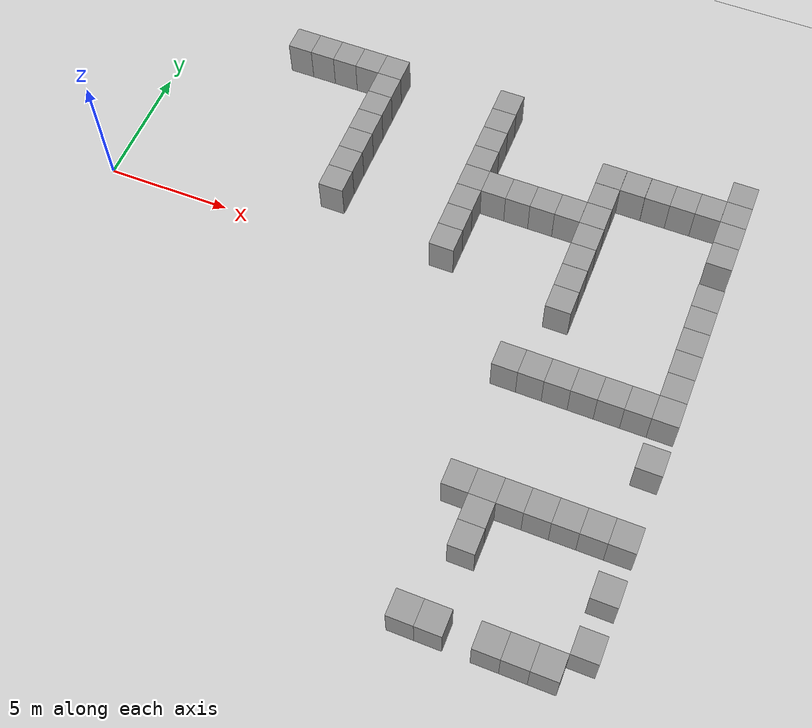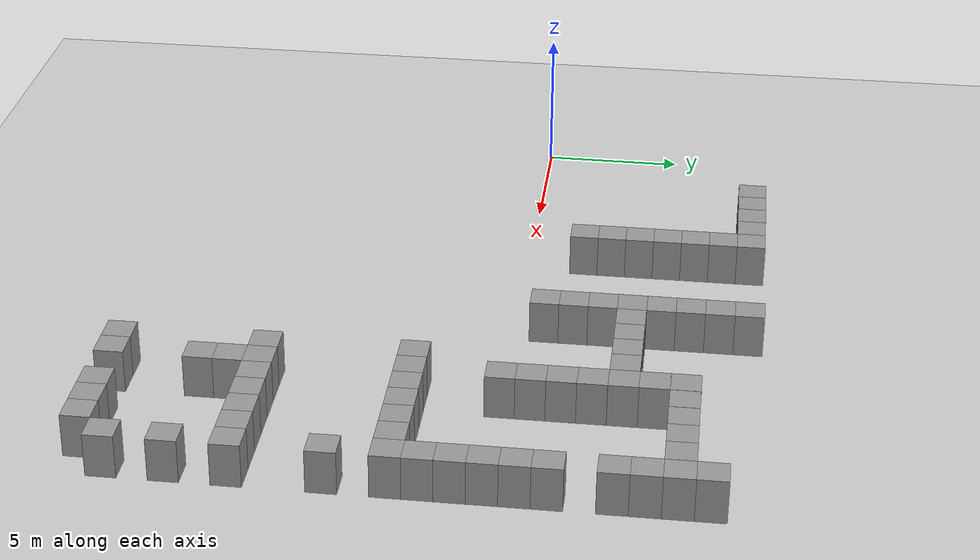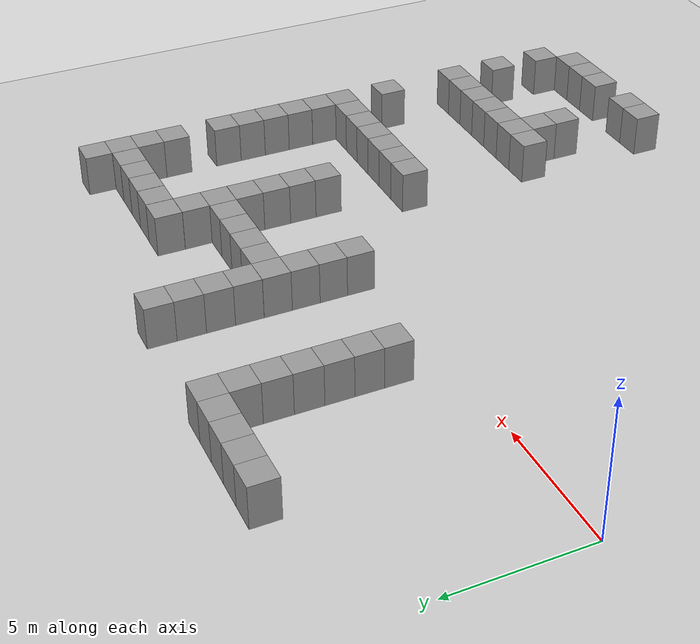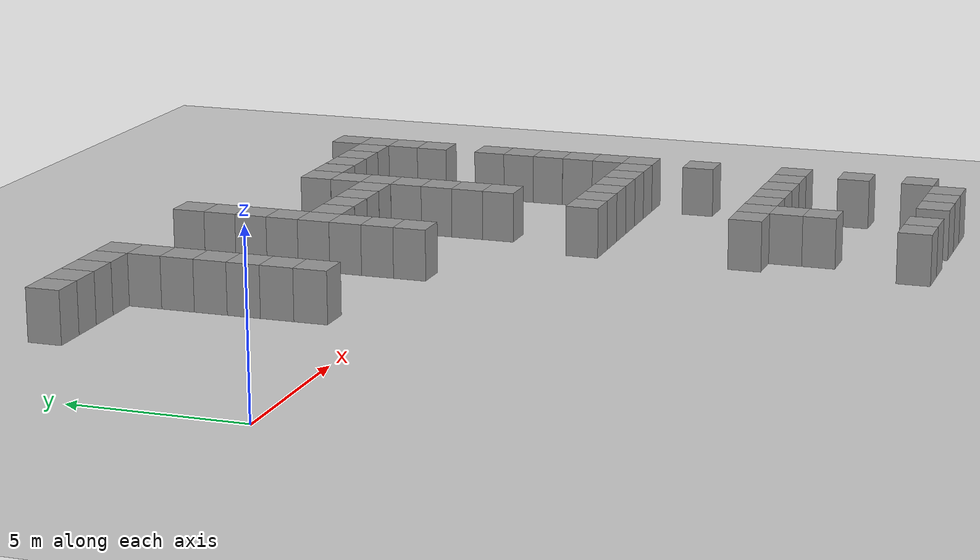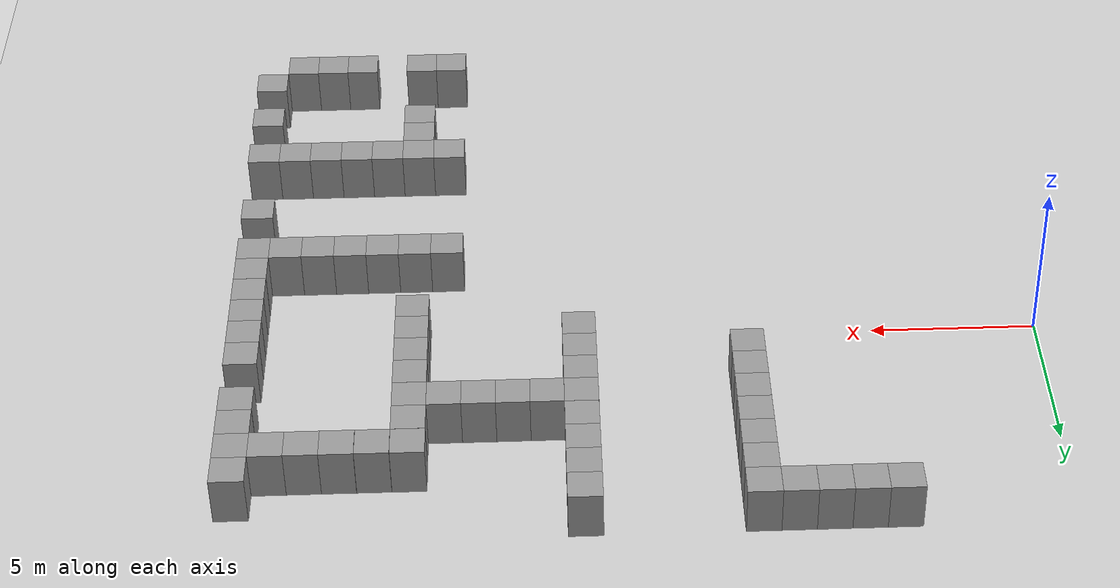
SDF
<sdf version="1.4">
 <world name="default">
  <model name="ground_plane">
   <static>1</static>
   <link name="link">
    <collision name="collision">
     <geometry><plane><normal>0 0 1</normal><size>100 100</size></plane></geometry>
     <surface><friction><ode><mu>100</mu><mu2>50</mu2></ode></friction></surface>
    </collision>
    <visual name="visual">
     <cast_shadows>0</cast_shadows>
     <geometry><plane><normal>0 0 1</normal><size>100 100</size></plane></geometry>
     <material>
      <script><uri>file://media/materials/scripts/gazebo.material</uri><name>Gazebo/Grey</name></script>
     </material>
    </visual>
    <velocity_decay><linear>0</linear><angular>0</angular></velocity_decay>
   </link>
  </model>
  <model name="unit_box_30">
   <pose>8.99995 1.99999 0.5 0 0 -7e-06</pose>
   <static>1</static>
   <link name="link">
    <inertial>
     <mass>1</mass>
     <inertia><ixx>1</ixx><ixy>0</ixy><ixz>0</ixz><iyy>1</iyy><iyz>0</iyz><izz>1</izz></inertia>
    </inertial>
    <collision name="collision"><geometry><box><size>1 1 2</size></box></geometry></collision>
    <visual name="visual">
     <geometry><box><size>1 1 2</size></box></geometry>
     <material>
      <script><uri>file://media/materials/scripts/gazebo.material</uri><name>Gazebo/Grey</name></script>
     </material>
    </visual>
    <velocity_decay><linear>0</linear><angular>0</angular></velocity_decay>
   </link>
   <static>0</static>
  </model>
  <model name="unit_box_31">
   <pose>8.99997 3 0.5 0 0 -6e-06</pose>
   <static>1</static>
   <link name="link">
    <inertial>
     <mass>1</mass>
     <inertia><ixx>1</ixx><ixy>0</ixy><ixz>0</ixz><iyy>1</iyy><iyz>0</iyz><izz>1</izz></inertia>
    </inertial>
    <collision name="collision"><geometry><box><size>1 1 2</size></box></geometry></collision>
    <visual name="visual">
     <geometry><box><size>1 1 2</size></box></geometry>
     <material>
      <script><uri>file://media/materials/scripts/gazebo.material</uri><name>Gazebo/Grey</name></script>
     </material>
    </visual>
    <velocity_decay><linear>0</linear><angular>0</angular></velocity_decay>
   </link>
   <static>0</static>
  </model>
  <model name="unit_box_32">
   <pose>8.99997 4 0.5 0 0 -8e-06</pose>
   <static>1</static>
   <link name="link">
    <inertial>
     <mass>1</mass>
     <inertia><ixx>1</ixx><ixy>0</ixy><ixz>0</ixz><iyy>1</iyy><iyz>0</iyz><izz>1</izz></inertia>
    </inertial>
    <collision name="collision"><geometry><box><size>1 1 2</size></box></geometry></collision>
    <visual name="visual">
     <geometry><box><size>1 1 2</size></box></geometry>
     <material>
      <script><uri>file://media/materials/scripts/gazebo.material</uri><name>Gazebo/Grey</name></script>
     </material>
    </visual>
    <velocity_decay><linear>0</linear><angular>0</angular></velocity_decay>
   </link>
   <static>0</static>
  </model>
  <model name="unit_box_33">
   <pose>9 5 0.5 0 0 -7e-06</pose>
   <static>1</static>
   <link name="link">
    <inertial>
     <mass>1</mass>
     <inertia><ixx>1</ixx><ixy>0</ixy><ixz>0</ixz><iyy>1</iyy><iyz>0</iyz><izz>1</izz></inertia>
    </inertial>
    <collision name="collision"><geometry><box><size>1 1 2</size></box></geometry></collision>
    <visual name="visual">
     <geometry><box><size>1 1 2</size></box></geometry>
     <material>
      <script><uri>file://media/materials/scripts/gazebo.material</uri><name>Gazebo/Grey</name></script>
     </material>
    </visual>
    <velocity_decay><linear>0</linear><angular>0</angular></velocity_decay>
   </link>
   <static>0</static>
  </model>
  <model name="unit_box_34">
   <pose>9 6 0.5 0 0 -6e-06</pose>
   <static>1</static>
   <link name="link">
    <inertial>
     <mass>1</mass>
     <inertia><ixx>1</ixx><ixy>0</ixy><ixz>0</ixz><iyy>1</iyy><iyz>0</iyz><izz>1</izz></inertia>
    </inertial>
    <collision name="collision"><geometry><box><size>1 1 2</size></box></geometry></collision>
    <visual name="visual">
     <geometry><box><size>1 1 2</size></box></geometry>
     <material>
      <script><uri>file://media/materials/scripts/gazebo.material</uri><name>Gazebo/Grey</name></script>
     </material>
    </visual>
    <velocity_decay><linear>0</linear><angular>0</angular></velocity_decay>
   </link>
   <static>0</static>
  </model>
  <model name="unit_box_38">
   <pose>9.00001 7 0.5 0 0 -3e-06</pose>
   <static>1</static>
   <link name="link">
    <inertial>
     <mass>1</mass>
     <inertia><ixx>1</ixx><ixy>0</ixy><ixz>0</ixz><iyy>1</iyy><iyz>0</iyz><izz>1</izz></inertia>
    </inertial>
    <collision name="collision"><geometry><box><size>1 1 2</size></box></geometry></collision>
    <visual name="visual">
     <geometry><box><size>1 1 2</size></box></geometry>
     <material>
      <script><uri>file://media/materials/scripts/gazebo.material</uri><name>Gazebo/Grey</name></script>
     </material>
    </visual>
    <velocity_decay><linear>0</linear><angular>0</angular></velocity_decay>
   </link>
   <static>0</static>
  </model>
  <model name="unit_box_39">
   <pose>9 8.00001 0.5 0 0 -1e-06</pose>
   <static>1</static>
   <link name="link">
    <inertial>
     <mass>1</mass>
     <inertia><ixx>1</ixx><ixy>0</ixy><ixz>0</ixz><iyy>1</iyy><iyz>0</iyz><izz>1</izz></inertia>
    </inertial>
    <collision name="collision"><geometry><box><size>1 1 2</size></box></geometry></collision>
    <visual name="visual">
     <geometry><box><size>1 1 2</size></box></geometry>
     <material>
      <script><uri>file://media/materials/scripts/gazebo.material</uri><name>Gazebo/Grey</name></script>
     </material>
    </visual>
    <velocity_decay><linear>0</linear><angular>0</angular></velocity_decay>
   </link>
   <static>0</static>
  </model>
  <model name="unit_box_51">
   <pose>8 7.99999 0.5 0 -0 2e-06</pose>
   <static>1</static>
   <link name="link">
    <inertial>
     <mass>1</mass>
     <inertia><ixx>1</ixx><ixy>0</ixy><ixz>0</ixz><iyy>1</iyy><iyz>0</iyz><izz>1</izz></inertia>
    </inertial>
    <collision name="collision"><geometry><box><size>1 1 2</size></box></geometry></collision>
    <visual name="visual">
     <geometry><box><size>1 1 2</size></box></geometry>
     <material>
      <script><uri>file://media/materials/scripts/gazebo.material</uri><name>Gazebo/Grey</name></script>
     </material>
    </visual>
    <velocity_decay><linear>0</linear><angular>0</angular></velocity_decay>
   </link>
   <static>0</static>
  </model>
  <model name="unit_box_52">
   <pose>7 8.00001 0.5 0 -0 1e-06</pose>
   <static>1</static>
   <link name="link">
    <inertial>
     <mass>1</mass>
     <inertia><ixx>1</ixx><ixy>0</ixy><ixz>0</ixz><iyy>1</iyy><iyz>0</iyz><izz>1</izz></inertia>
    </inertial>
    <collision name="collision"><geometry><box><size>1 1 2</size></box></geometry></collision>
    <visual name="visual">
     <geometry><box><size>1 1 2</size></box></geometry>
     <material>
      <script><uri>file://media/materials/scripts/gazebo.material</uri><name>Gazebo/Grey</name></script>
     </material>
    </visual>
    <velocity_decay><linear>0</linear><angular>0</angular></velocity_decay>
   </link>
   <static>0</static>
  </model>
  <model name="unit_box_53">
   <pose>6 8 0.5 0 0 -3e-06</pose>
   <static>1</static>
   <link name="link">
    <inertial>
     <mass>1</mass>
     <inertia><ixx>1</ixx><ixy>0</ixy><ixz>0</ixz><iyy>1</iyy><iyz>0</iyz><izz>1</izz></inertia>
    </inertial>
    <collision name="collision"><geometry><box><size>1 1 2</size></box></geometry></collision>
    <visual name="visual">
     <geometry><box><size>1 1 2</size></box></geometry>
     <material>
      <script><uri>file://media/materials/scripts/gazebo.material</uri><name>Gazebo/Grey</name></script>
     </material>
    </visual>
    <velocity_decay><linear>0</linear><angular>0</angular></velocity_decay>
   </link>
   <static>0</static>
  </model>
  <model name="unit_box_54">
   <pose>5 8 0.5 0 0 -1e-06</pose>
   <static>1</static>
   <link name="link">
    <inertial>
     <mass>1</mass>
     <inertia><ixx>1</ixx><ixy>0</ixy><ixz>0</ixz><iyy>1</iyy><iyz>0</iyz><izz>1</izz></inertia>
    </inertial>
    <collision name="collision"><geometry><box><size>1 1 2</size></box></geometry></collision>
    <visual name="visual">
     <geometry><box><size>1 1 2</size></box></geometry>
     <material>
      <script><uri>file://media/materials/scripts/gazebo.material</uri><name>Gazebo/Grey</name></script>
     </material>
    </visual>
    <velocity_decay><linear>0</linear><angular>0</angular></velocity_decay>
   </link>
   <static>0</static>
  </model>
  <model name="unit_box_169">
   <pose>14 8.00027 0.5 0 0 -7.2e-05</pose>
   <static>1</static>
   <link name="link">
    <inertial>
     <mass>1</mass>
     <inertia><ixx>1</ixx><ixy>0</ixy><ixz>0</ixz><iyy>1</iyy><iyz>0</iyz><izz>1</izz></inertia>
    </inertial>
    <collision name="collision"><geometry><box><size>1 1 2</size></box></geometry></collision>
    <visual name="visual">
     <geometry><box><size>1 1 2</size></box></geometry>
     <material>
      <script><uri>file://media/materials/scripts/gazebo.material</uri><name>Gazebo/Grey</name></script>
     </material>
    </visual>
    <velocity_decay><linear>0</linear><angular>0</angular></velocity_decay>
   </link>
   <static>0</static>
  </model>
  <model name="unit_box_170">
   <pose>14 7.00026 0.5 0 0 -7.2e-05</pose>
   <static>1</static>
   <link name="link">
    <inertial>
     <mass>1</mass>
     <inertia><ixx>1</ixx><ixy>0</ixy><ixz>0</ixz><iyy>1</iyy><iyz>0</iyz><izz>1</izz></inertia>
    </inertial>
    <collision name="collision"><geometry><box><size>1 1 2</size></box></geometry></collision>
    <visual name="visual">
     <geometry><box><size>1 1 2</size></box></geometry>
     <material>
      <script><uri>file://media/materials/scripts/gazebo.material</uri><name>Gazebo/Grey</name></script>
     </material>
    </visual>
    <velocity_decay><linear>0</linear><angular>0</angular></velocity_decay>
   </link>
   <static>0</static>
  </model>
  <model name="unit_box_171">
   <pose>13.9998 6.00025 0.5 0 0 -8.2e-05</pose>
   <static>1</static>
   <link name="link">
    <inertial>
     <mass>1</mass>
     <inertia><ixx>1</ixx><ixy>0</ixy><ixz>0</ixz><iyy>1</iyy><iyz>0</iyz><izz>1</izz></inertia>
    </inertial>
    <collision name="collision"><geometry><box><size>1 1 2</size></box></geometry></collision>
    <visual name="visual">
     <geometry><box><size>1 1 2</size></box></geometry>
     <material>
      <script><uri>file://media/materials/scripts/gazebo.material</uri><name>Gazebo/Grey</name></script>
     </material>
    </visual>
    <velocity_decay><linear>0</linear><angular>0</angular></velocity_decay>
   </link>
   <static>0</static>
  </model>
  <model name="unit_box_172">
   <pose>13.9996 5.00025 0.5 0 0 -8.2e-05</pose>
   <static>1</static>
   <link name="link">
    <inertial>
     <mass>1</mass>
     <inertia><ixx>1</ixx><ixy>0</ixy><ixz>0</ixz><iyy>1</iyy><iyz>0</iyz><izz>1</izz></inertia>
    </inertial>
    <collision name="collision"><geometry><box><size>1 1 2</size></box></geometry></collision>
    <visual name="visual">
     <geometry><box><size>1 1 2</size></box></geometry>
     <material>
      <script><uri>file://media/materials/scripts/gazebo.material</uri><name>Gazebo/Grey</name></script>
     </material>
    </visual>
    <velocity_decay><linear>0</linear><angular>0</angular></velocity_decay>
   </link>
   <static>0</static>
  </model>
  <model name="unit_box_173">
   <pose>13.9973 3.99985 0.5 0 -0 0.000731</pose>
   <static>1</static>
   <link name="link">
    <inertial>
     <mass>1</mass>
     <inertia><ixx>1</ixx><ixy>0</ixy><ixz>0</ixz><iyy>1</iyy><iyz>0</iyz><izz>1</izz></inertia>
    </inertial>
    <collision name="collision"><geometry><box><size>1 1 2</size></box></geometry></collision>
    <visual name="visual">
     <geometry><box><size>1 1 2</size></box></geometry>
     <material>
      <script><uri>file://media/materials/scripts/gazebo.material</uri><name>Gazebo/Grey</name></script>
     </material>
    </visual>
    <velocity_decay><linear>0</linear><angular>0</angular></velocity_decay>
   </link>
   <static>0</static>
  </model>
  <model name="unit_box_174">
   <pose>13.9996 2.99959 0.5 0 -0 0.000224</pose>
   <static>1</static>
   <link name="link">
    <inertial>
     <mass>1</mass>
     <inertia><ixx>1</ixx><ixy>0</ixy><ixz>0</ixz><iyy>1</iyy><iyz>0</iyz><izz>1</izz></inertia>
    </inertial>
    <collision name="collision"><geometry><box><size>1 1 2</size></box></geometry></collision>
    <visual name="visual">
     <geometry><box><size>1 1 2</size></box></geometry>
     <material>
      <script><uri>file://media/materials/scripts/gazebo.material</uri><name>Gazebo/Grey</name></script>
     </material>
    </visual>
    <velocity_decay><linear>0</linear><angular>0</angular></velocity_decay>
   </link>
   <static>0</static>
  </model>
  <model name="unit_box_175">
   <pose>13.9999 1.99957 0.5 0 -0 0.000199</pose>
   <static>1</static>
   <link name="link">
    <inertial>
     <mass>1</mass>
     <inertia><ixx>1</ixx><ixy>0</ixy><ixz>0</ixz><iyy>1</iyy><iyz>0</iyz><izz>1</izz></inertia>
    </inertial>
    <collision name="collision"><geometry><box><size>1 1 2</size></box></geometry></collision>
    <visual name="visual">
     <geometry><box><size>1 1 2</size></box></geometry>
     <material>
      <script><uri>file://media/materials/scripts/gazebo.material</uri><name>Gazebo/Grey</name></script>
     </material>
    </visual>
    <velocity_decay><linear>0</linear><angular>0</angular></velocity_decay>
   </link>
   <static>0</static>
  </model>
  <model name="unit_box_176">
   <pose>14 0.999522 0.5 0 -0 9.7e-05</pose>
   <static>1</static>
   <link name="link">
    <inertial>
     <mass>1</mass>
     <inertia><ixx>1</ixx><ixy>0</ixy><ixz>0</ixz><iyy>1</iyy><iyz>0</iyz><izz>1</izz></inertia>
    </inertial>
    <collision name="collision"><geometry><box><size>1 1 2</size></box></geometry></collision>
    <visual name="visual">
     <geometry><box><size>1 1 2</size></box></geometry>
     <material>
      <script><uri>file://media/materials/scripts/gazebo.material</uri><name>Gazebo/Grey</name></script>
     </material>
    </visual>
    <velocity_decay><linear>0</linear><angular>0</angular></velocity_decay>
   </link>
   <static>0</static>
  </model>
  <model name="unit_box_177">
   <pose>14.9974 4.00019 0.5 0 -0 0.000926</pose>
   <static>1</static>
   <link name="link">
    <inertial>
     <mass>1</mass>
     <inertia><ixx>1</ixx><ixy>0</ixy><ixz>0</ixz><iyy>1</iyy><iyz>0</iyz><izz>1</izz></inertia>
    </inertial>
    <collision name="collision"><geometry><box><size>1 1 2</size></box></geometry></collision>
    <visual name="visual">
     <geometry><box><size>1 1 2</size></box></geometry>
     <material>
      <script><uri>file://media/materials/scripts/gazebo.material</uri><name>Gazebo/Grey</name></script>
     </material>
    </visual>
    <velocity_decay><linear>0</linear><angular>0</angular></velocity_decay>
   </link>
   <static>0</static>
  </model>
  <model name="unit_box_178">
   <pose>15.9974 4.00015 0.5 0 -0 0.001009</pose>
   <static>1</static>
   <link name="link">
    <inertial>
     <mass>1</mass>
     <inertia><ixx>1</ixx><ixy>0</ixy><ixz>0</ixz><iyy>1</iyy><iyz>0</iyz><izz>1</izz></inertia>
    </inertial>
    <collision name="collision"><geometry><box><size>1 1 2</size></box></geometry></collision>
    <visual name="visual">
     <geometry><box><size>1 1 2</size></box></geometry>
     <material>
      <script><uri>file://media/materials/scripts/gazebo.material</uri><name>Gazebo/Grey</name></script>
     </material>
    </visual>
    <velocity_decay><linear>0</linear><angular>0</angular></velocity_decay>
   </link>
   <static>0</static>
  </model>
  <model name="unit_box_179">
   <pose>16.9975 3.99993 0.5 0 -0 0.001188</pose>
   <static>1</static>
   <link name="link">
    <inertial>
     <mass>1</mass>
     <inertia><ixx>1</ixx><ixy>0</ixy><ixz>0</ixz><iyy>1</iyy><iyz>0</iyz><izz>1</izz></inertia>
    </inertial>
    <collision name="collision"><geometry><box><size>1 1 2</size></box></geometry></collision>
    <visual name="visual">
     <geometry><box><size>1 1 2</size></box></geometry>
     <material>
      <script><uri>file://media/materials/scripts/gazebo.material</uri><name>Gazebo/Grey</name></script>
     </material>
    </visual>
    <velocity_decay><linear>0</linear><angular>0</angular></velocity_decay>
   </link>
   <static>0</static>
  </model>
  <model name="unit_box_180">
   <pose>17.9977 4.00059 0.5 0 -0 0.001689</pose>
   <static>1</static>
   <link name="link">
    <inertial>
     <mass>1</mass>
     <inertia><ixx>1</ixx><ixy>0</ixy><ixz>0</ixz><iyy>1</iyy><iyz>0</iyz><izz>1</izz></inertia>
    </inertial>
    <collision name="collision"><geometry><box><size>1 1 2</size></box></geometry></collision>
    <visual name="visual">
     <geometry><box><size>1 1 2</size></box></geometry>
     <material>
      <script><uri>file://media/materials/scripts/gazebo.material</uri><name>Gazebo/Grey</name></script>
     </material>
    </visual>
    <velocity_decay><linear>0</linear><angular>0</angular></velocity_decay>
   </link>
   <static>0</static>
  </model>
  <model name="unit_box_181">
   <pose>18.9984 4.00065 0.5 0 -0 0.002125</pose>
   <static>1</static>
   <link name="link">
    <inertial>
     <mass>1</mass>
     <inertia><ixx>1</ixx><ixy>0</ixy><ixz>0</ixz><iyy>1</iyy><iyz>0</iyz><izz>1</izz></inertia>
    </inertial>
    <collision name="collision"><geometry><box><size>1 1 2</size></box></geometry></collision>
    <visual name="visual">
     <geometry><box><size>1 1 2</size></box></geometry>
     <material>
      <script><uri>file://media/materials/scripts/gazebo.material</uri><name>Gazebo/Grey</name></script>
     </material>
    </visual>
    <velocity_decay><linear>0</linear><angular>0</angular></velocity_decay>
   </link>
   <static>0</static>
  </model>
  <model name="unit_box_182">
   <pose>24.0018 -0.999661 0.5 0 -0 7.7e-05</pose>
   <static>1</static>
   <link name="link">
    <inertial>
     <mass>1</mass>
     <inertia><ixx>1</ixx><ixy>0</ixy><ixz>0</ixz><iyy>1</iyy><iyz>0</iyz><izz>1</izz></inertia>
    </inertial>
    <collision name="collision"><geometry><box><size>1 1 2</size></box></geometry></collision>
    <visual name="visual">
     <geometry><box><size>1 1 2</size></box></geometry>
     <material>
      <script><uri>file://media/materials/scripts/gazebo.material</uri><name>Gazebo/Grey</name></script>
     </material>
    </visual>
    <velocity_decay><linear>0</linear><angular>0</angular></velocity_decay>
   </link>
   <static>0</static>
  </model>
  <model name="unit_box_183">
   <pose>18.996 5.00065 0.5 0 -0 0.002125</pose>
   <static>1</static>
   <link name="link">
    <inertial>
     <mass>1</mass>
     <inertia><ixx>1</ixx><ixy>0</ixy><ixz>0</ixz><iyy>1</iyy><iyz>0</iyz><izz>1</izz></inertia>
    </inertial>
    <collision name="collision"><geometry><box><size>1 1 2</size></box></geometry></collision>
    <visual name="visual">
     <geometry><box><size>1 1 2</size></box></geometry>
     <material>
      <script><uri>file://media/materials/scripts/gazebo.material</uri><name>Gazebo/Grey</name></script>
     </material>
    </visual>
    <velocity_decay><linear>0</linear><angular>0</angular></velocity_decay>
   </link>
   <static>0</static>
  </model>
  <model name="unit_box_184">
   <pose>18.9921 6.00258 0.5 0 -0 0.000734</pose>
   <static>1</static>
   <link name="link">
    <inertial>
     <mass>1</mass>
     <inertia><ixx>1</ixx><ixy>0</ixy><ixz>0</ixz><iyy>1</iyy><iyz>0</iyz><izz>1</izz></inertia>
    </inertial>
    <collision name="collision"><geometry><box><size>1 1 2</size></box></geometry></collision>
    <visual name="visual">
     <geometry><box><size>1 1 2</size></box></geometry>
     <material>
      <script><uri>file://media/materials/scripts/gazebo.material</uri><name>Gazebo/Grey</name></script>
     </material>
    </visual>
    <velocity_decay><linear>0</linear><angular>0</angular></velocity_decay>
   </link>
   <static>0</static>
  </model>
  <model name="unit_box_185">
   <pose>21.0007 5.99621 0.5 0 -0 0.00019</pose>
   <static>1</static>
   <link name="link">
    <inertial>
     <mass>1</mass>
     <inertia><ixx>1</ixx><ixy>0</ixy><ixz>0</ixz><iyy>1</iyy><iyz>0</iyz><izz>1</izz></inertia>
    </inertial>
    <collision name="collision"><geometry><box><size>1 1 2</size></box></geometry></collision>
    <visual name="visual">
     <geometry><box><size>1 1 2</size></box></geometry>
     <material>
      <script><uri>file://media/materials/scripts/gazebo.material</uri><name>Gazebo/Grey</name></script>
     </material>
    </visual>
    <velocity_decay><linear>0</linear><angular>0</angular></velocity_decay>
   </link>
   <static>0</static>
  </model>
  <model name="unit_box_186">
   <pose>22.0007 5.99697 0.5 0 -0 0.000178</pose>
   <static>1</static>
   <link name="link">
    <inertial>
     <mass>1</mass>
     <inertia><ixx>1</ixx><ixy>0</ixy><ixz>0</ixz><iyy>1</iyy><iyz>0</iyz><izz>1</izz></inertia>
    </inertial>
    <collision name="collision"><geometry><box><size>1 1 2</size></box></geometry></collision>
    <visual name="visual">
     <geometry><box><size>1 1 2</size></box></geometry>
     <material>
      <script><uri>file://media/materials/scripts/gazebo.material</uri><name>Gazebo/Grey</name></script>
     </material>
    </visual>
    <velocity_decay><linear>0</linear><angular>0</angular></velocity_decay>
   </link>
   <static>0</static>
  </model>
  <model name="unit_box_187">
   <pose>23.0007 5.99842 0.5 0 -0 0.000172</pose>
   <static>1</static>
   <link name="link">
    <inertial>
     <mass>1</mass>
     <inertia><ixx>1</ixx><ixy>0</ixy><ixz>0</ixz><iyy>1</iyy><iyz>0</iyz><izz>1</izz></inertia>
    </inertial>
    <collision name="collision"><geometry><box><size>1 1 2</size></box></geometry></collision>
    <visual name="visual">
     <geometry><box><size>1 1 2</size></box></geometry>
     <material>
      <script><uri>file://media/materials/scripts/gazebo.material</uri><name>Gazebo/Grey</name></script>
     </material>
    </visual>
    <velocity_decay><linear>0</linear><angular>0</angular></velocity_decay>
   </link>
   <static>0</static>
  </model>
  <model name="unit_box_191">
   <pose>24.0002 7.00042 0.5 0 -0 3.8e-05</pose>
   <static>1</static>
   <link name="link">
    <inertial>
     <mass>1</mass>
     <inertia><ixx>1</ixx><ixy>0</ixy><ixz>0</ixz><iyy>1</iyy><iyz>0</iyz><izz>1</izz></inertia>
    </inertial>
    <collision name="collision"><geometry><box><size>1 1 2</size></box></geometry></collision>
    <visual name="visual">
     <geometry><box><size>1 1 2</size></box></geometry>
     <material>
      <script><uri>file://media/materials/scripts/gazebo.material</uri><name>Gazebo/Grey</name></script>
     </material>
    </visual>
    <velocity_decay><linear>0</linear><angular>0</angular></velocity_decay>
   </link>
   <static>0</static>
  </model>
  <model name="unit_box_192">
   <pose>24.0014 6.00042 0.5 0 -0 3.8e-05</pose>
   <static>1</static>
   <link name="link">
    <inertial>
     <mass>1</mass>
     <inertia><ixx>1</ixx><ixy>0</ixy><ixz>0</ixz><iyy>1</iyy><iyz>0</iyz><izz>1</izz></inertia>
    </inertial>
    <collision name="collision"><geometry><box><size>1 1 2</size></box></geometry></collision>
    <visual name="visual">
     <geometry><box><size>1 1 2</size></box></geometry>
     <material>
      <script><uri>file://media/materials/scripts/gazebo.material</uri><name>Gazebo/Grey</name></script>
     </material>
    </visual>
    <velocity_decay><linear>0</linear><angular>0</angular></velocity_decay>
   </link>
   <static>0</static>
  </model>
  <model name="unit_box_193">
   <pose>19.996 5.99787 0.5 0 -0 0.000185</pose>
   <static>1</static>
   <link name="link">
    <inertial>
     <mass>1</mass>
     <inertia><ixx>1</ixx><ixy>0</ixy><ixz>0</ixz><iyy>1</iyy><iyz>0</iyz><izz>1</izz></inertia>
    </inertial>
    <collision name="collision"><geometry><box><size>1 1 2</size></box></geometry></collision>
    <visual name="visual">
     <geometry><box><size>1 1 2</size></box></geometry>
     <material>
      <script><uri>file://media/materials/scripts/gazebo.material</uri><name>Gazebo/Grey</name></script>
     </material>
    </visual>
    <velocity_decay><linear>0</linear><angular>0</angular></velocity_decay>
   </link>
   <static>0</static>
  </model>
  <model name="unit_box_194">
   <pose>24.0008 5.00042 0.5 0 -0 3.8e-05</pose>
   <static>1</static>
   <link name="link">
    <inertial>
     <mass>1</mass>
     <inertia><ixx>1</ixx><ixy>0</ixy><ixz>0</ixz><iyy>1</iyy><iyz>0</iyz><izz>1</izz></inertia>
    </inertial>
    <collision name="collision"><geometry><box><size>1 1 2</size></box></geometry></collision>
    <visual name="visual">
     <geometry><box><size>1 1 2</size></box></geometry>
     <material>
      <script><uri>file://media/materials/scripts/gazebo.material</uri><name>Gazebo/Grey</name></script>
     </material>
    </visual>
    <velocity_decay><linear>0</linear><angular>0</angular></velocity_decay>
   </link>
   <static>0</static>
  </model>
  <model name="unit_box_195">
   <pose>24.0001 4.00041 0.5 0 -0 5.9e-05</pose>
   <static>1</static>
   <link name="link">
    <inertial>
     <mass>1</mass>
     <inertia><ixx>1</ixx><ixy>0</ixy><ixz>0</ixz><iyy>1</iyy><iyz>0</iyz><izz>1</izz></inertia>
    </inertial>
    <collision name="collision"><geometry><box><size>1 1 2</size></box></geometry></collision>
    <visual name="visual">
     <geometry><box><size>1 1 2</size></box></geometry>
     <material>
      <script><uri>file://media/materials/scripts/gazebo.material</uri><name>Gazebo/Grey</name></script>
     </material>
    </visual>
    <velocity_decay><linear>0</linear><angular>0</angular></velocity_decay>
   </link>
   <static>0</static>
  </model>
  <model name="unit_box_197">
   <pose>23.9999 2.00038 0.5 0 -0 6.3e-05</pose>
   <static>1</static>
   <link name="link">
    <inertial>
     <mass>1</mass>
     <inertia><ixx>1</ixx><ixy>0</ixy><ixz>0</ixz><iyy>1</iyy><iyz>0</iyz><izz>1</izz></inertia>
    </inertial>
    <collision name="collision"><geometry><box><size>1 1 2</size></box></geometry></collision>
    <visual name="visual">
     <geometry><box><size>1 1 2</size></box></geometry>
     <material>
      <script><uri>file://media/materials/scripts/gazebo.material</uri><name>Gazebo/Grey</name></script>
     </material>
    </visual>
    <velocity_decay><linear>0</linear><angular>0</angular></velocity_decay>
   </link>
   <static>0</static>
  </model>
  <model name="unit_box_198">
   <pose>23.9999 1.00035 0.5 0 -0 7.1e-05</pose>
   <static>1</static>
   <link name="link">
    <inertial>
     <mass>1</mass>
     <inertia><ixx>1</ixx><ixy>0</ixy><ixz>0</ixz><iyy>1</iyy><iyz>0</iyz><izz>1</izz></inertia>
    </inertial>
    <collision name="collision"><geometry><box><size>1 1 2</size></box></geometry></collision>
    <visual name="visual">
     <geometry><box><size>1 1 2</size></box></geometry>
     <material>
      <script><uri>file://media/materials/scripts/gazebo.material</uri><name>Gazebo/Grey</name></script>
     </material>
    </visual>
    <velocity_decay><linear>0</linear><angular>0</angular></velocity_decay>
   </link>
   <static>0</static>
  </model>
  <model name="unit_box_199">
   <pose>23.9997 0.000344 0.5 0 -0 7.4e-05</pose>
   <static>1</static>
   <link name="link">
    <inertial>
     <mass>1</mass>
     <inertia><ixx>1</ixx><ixy>0</ixy><ixz>0</ixz><iyy>1</iyy><iyz>0</iyz><izz>1</izz></inertia>
    </inertial>
    <collision name="collision"><geometry><box><size>1 1 2</size></box></geometry></collision>
    <visual name="visual">
     <geometry><box><size>1 1 2</size></box></geometry>
     <material>
      <script><uri>file://media/materials/scripts/gazebo.material</uri><name>Gazebo/Grey</name></script>
     </material>
    </visual>
    <velocity_decay><linear>0</linear><angular>0</angular></velocity_decay>
   </link>
   <static>0</static>
  </model>
  <model name="unit_box_200">
   <pose>19 2.9997 0.5 0 -0 0.000228</pose>
   <static>1</static>
   <link name="link">
    <inertial>
     <mass>1</mass>
     <inertia><ixx>1</ixx><ixy>0</ixy><ixz>0</ixz><iyy>1</iyy><iyz>0</iyz><izz>1</izz></inertia>
    </inertial>
    <collision name="collision"><geometry><box><size>1 1 2</size></box></geometry></collision>
    <visual name="visual">
     <geometry><box><size>1 1 2</size></box></geometry>
     <material>
      <script><uri>file://media/materials/scripts/gazebo.material</uri><name>Gazebo/Grey</name></script>
     </material>
    </visual>
    <velocity_decay><linear>0</linear><angular>0</angular></velocity_decay>
   </link>
   <static>0</static>
  </model>
  <model name="unit_box_201">
   <pose>19 1.99966 0.5 0 -0 0.000143</pose>
   <static>1</static>
   <link name="link">
    <inertial>
     <mass>1</mass>
     <inertia><ixx>1</ixx><ixy>0</ixy><ixz>0</ixz><iyy>1</iyy><iyz>0</iyz><izz>1</izz></inertia>
    </inertial>
    <collision name="collision"><geometry><box><size>1 1 2</size></box></geometry></collision>
    <visual name="visual">
     <geometry><box><size>1 1 2</size></box></geometry>
     <material>
      <script><uri>file://media/materials/scripts/gazebo.material</uri><name>Gazebo/Grey</name></script>
     </material>
    </visual>
    <velocity_decay><linear>0</linear><angular>0</angular></velocity_decay>
   </link>
   <static>0</static>
  </model>
  <model name="unit_box_202">
   <pose>19 0.999639 0.5 0 -0 0.00011</pose>
   <static>1</static>
   <link name="link">
    <inertial>
     <mass>1</mass>
     <inertia><ixx>1</ixx><ixy>0</ixy><ixz>0</ixz><iyy>1</iyy><iyz>0</iyz><izz>1</izz></inertia>
    </inertial>
    <collision name="collision"><geometry><box><size>1 1 2</size></box></geometry></collision>
    <visual name="visual">
     <geometry><box><size>1 1 2</size></box></geometry>
     <material>
      <script><uri>file://media/materials/scripts/gazebo.material</uri><name>Gazebo/Grey</name></script>
     </material>
    </visual>
    <velocity_decay><linear>0</linear><angular>0</angular></velocity_decay>
   </link>
   <static>0</static>
  </model>
  <model name="unit_box_203">
   <pose>19 -0.000365 0.5 0 -0 0.000106</pose>
   <static>1</static>
   <link name="link">
    <inertial>
     <mass>1</mass>
     <inertia><ixx>1</ixx><ixy>0</ixy><ixz>0</ixz><iyy>1</iyy><iyz>0</iyz><izz>1</izz></inertia>
    </inertial>
    <collision name="collision"><geometry><box><size>1 1 2</size></box></geometry></collision>
    <visual name="visual">
     <geometry><box><size>1 1 2</size></box></geometry>
     <material>
      <script><uri>file://media/materials/scripts/gazebo.material</uri><name>Gazebo/Grey</name></script>
     </material>
    </visual>
    <velocity_decay><linear>0</linear><angular>0</angular></velocity_decay>
   </link>
   <static>0</static>
  </model>
  <model name="unit_box_204">
   <pose>24 -1.99999 0.5 0 -0 1e-06</pose>
   <static>1</static>
   <link name="link">
    <inertial>
     <mass>1</mass>
     <inertia><ixx>1</ixx><ixy>0</ixy><ixz>0</ixz><iyy>1</iyy><iyz>0</iyz><izz>1</izz></inertia>
    </inertial>
    <collision name="collision"><geometry><box><size>1 1 2</size></box></geometry></collision>
    <visual name="visual">
     <geometry><box><size>1 1 2</size></box></geometry>
     <material>
      <script><uri>file://media/materials/scripts/gazebo.material</uri><name>Gazebo/Grey</name></script>
     </material>
    </visual>
    <velocity_decay><linear>0</linear><angular>0</angular></velocity_decay>
   </link>
   <static>0</static>
  </model>
  <model name="unit_box_205">
   <pose>24 -2.99999 0.5 0 -0 1e-06</pose>
   <static>1</static>
   <link name="link">
    <inertial>
     <mass>1</mass>
     <inertia><ixx>1</ixx><ixy>0</ixy><ixz>0</ixz><iyy>1</iyy><iyz>0</iyz><izz>1</izz></inertia>
    </inertial>
    <collision name="collision"><geometry><box><size>1 1 2</size></box></geometry></collision>
    <visual name="visual">
     <geometry><box><size>1 1 2</size></box></geometry>
     <material>
      <script><uri>file://media/materials/scripts/gazebo.material</uri><name>Gazebo/Grey</name></script>
     </material>
    </visual>
    <velocity_decay><linear>0</linear><angular>0</angular></velocity_decay>
   </link>
   <static>0</static>
  </model>
  <model name="unit_box_207">
   <pose>24 -4.99999 0.5 0 0 -1e-06</pose>
   <static>1</static>
   <link name="link">
    <inertial>
     <mass>1</mass>
     <inertia><ixx>1</ixx><ixy>0</ixy><ixz>0</ixz><iyy>1</iyy><iyz>0</iyz><izz>1</izz></inertia>
    </inertial>
    <collision name="collision"><geometry><box><size>1 1 2</size></box></geometry></collision>
    <visual name="visual">
     <geometry><box><size>1 1 2</size></box></geometry>
     <material>
      <script><uri>file://media/materials/scripts/gazebo.material</uri><name>Gazebo/Grey</name></script>
     </material>
    </visual>
    <velocity_decay><linear>0</linear><angular>0</angular></velocity_decay>
   </link>
   <static>0</static>
  </model>
  <model name="unit_box_209">
   <pose>18 -3 0.5 0 0 -2e-06</pose>
   <static>1</static>
   <link name="link">
    <inertial>
     <mass>1</mass>
     <inertia><ixx>1</ixx><ixy>0</ixy><ixz>0</ixz><iyy>1</iyy><iyz>0</iyz><izz>1</izz></inertia>
    </inertial>
    <collision name="collision"><geometry><box><size>1 1 2</size></box></geometry></collision>
    <visual name="visual">
     <geometry><box><size>1 1 2</size></box></geometry>
     <material>
      <script><uri>file://media/materials/scripts/gazebo.material</uri><name>Gazebo/Grey</name></script>
     </material>
    </visual>
    <velocity_decay><linear>0</linear><angular>0</angular></velocity_decay>
   </link>
   <static>0</static>
  </model>
  <model name="unit_box_210">
   <pose>19 -3 0.5 0 0 -2e-06</pose>
   <static>1</static>
   <link name="link">
    <inertial>
     <mass>1</mass>
     <inertia><ixx>1</ixx><ixy>0</ixy><ixz>0</ixz><iyy>1</iyy><iyz>0</iyz><izz>1</izz></inertia>
    </inertial>
    <collision name="collision"><geometry><box><size>1 1 2</size></box></geometry></collision>
    <visual name="visual">
     <geometry><box><size>1 1 2</size></box></geometry>
     <material>
      <script><uri>file://media/materials/scripts/gazebo.material</uri><name>Gazebo/Grey</name></script>
     </material>
    </visual>
    <velocity_decay><linear>0</linear><angular>0</angular></velocity_decay>
   </link>
   <static>0</static>
  </model>
  <model name="unit_box_211">
   <pose>20 -3 0.5 0 0 -2e-06</pose>
   <static>1</static>
   <link name="link">
    <inertial>
     <mass>1</mass>
     <inertia><ixx>1</ixx><ixy>0</ixy><ixz>0</ixz><iyy>1</iyy><iyz>0</iyz><izz>1</izz></inertia>
    </inertial>
    <collision name="collision"><geometry><box><size>1 1 2</size></box></geometry></collision>
    <visual name="visual">
     <geometry><box><size>1 1 2</size></box></geometry>
     <material>
      <script><uri>file://media/materials/scripts/gazebo.material</uri><name>Gazebo/Grey</name></script>
     </material>
    </visual>
    <velocity_decay><linear>0</linear><angular>0</angular></velocity_decay>
   </link>
   <static>0</static>
  </model>
  <model name="unit_box_212">
   <pose>21 -3 0.5 0 0 -3e-06</pose>
   <static>1</static>
   <link name="link">
    <inertial>
     <mass>1</mass>
     <inertia><ixx>1</ixx><ixy>0</ixy><ixz>0</ixz><iyy>1</iyy><iyz>0</iyz><izz>1</izz></inertia>
    </inertial>
    <collision name="collision"><geometry><box><size>1 1 2</size></box></geometry></collision>
    <visual name="visual">
     <geometry><box><size>1 1 2</size></box></geometry>
     <material>
      <script><uri>file://media/materials/scripts/gazebo.material</uri><name>Gazebo/Grey</name></script>
     </material>
    </visual>
    <velocity_decay><linear>0</linear><angular>0</angular></velocity_decay>
   </link>
   <static>0</static>
  </model>
  <model name="unit_box_213">
   <pose>22 -3 0.5 0 0 -3e-06</pose>
   <static>1</static>
   <link name="link">
    <inertial>
     <mass>1</mass>
     <inertia><ixx>1</ixx><ixy>0</ixy><ixz>0</ixz><iyy>1</iyy><iyz>0</iyz><izz>1</izz></inertia>
    </inertial>
    <collision name="collision"><geometry><box><size>1 1 2</size></box></geometry></collision>
    <visual name="visual">
     <geometry><box><size>1 1 2</size></box></geometry>
     <material>
      <script><uri>file://media/materials/scripts/gazebo.material</uri><name>Gazebo/Grey</name></script>
     </material>
    </visual>
    <velocity_decay><linear>0</linear><angular>0</angular></velocity_decay>
   </link>
   <static>0</static>
  </model>
  <model name="unit_box_214">
   <pose>23 -3 0.5 0 0 -3e-06</pose>
   <static>1</static>
   <link name="link">
    <inertial>
     <mass>1</mass>
     <inertia><ixx>1</ixx><ixy>0</ixy><ixz>0</ixz><iyy>1</iyy><iyz>0</iyz><izz>1</izz></inertia>
    </inertial>
    <collision name="collision"><geometry><box><size>1 1 2</size></box></geometry></collision>
    <visual name="visual">
     <geometry><box><size>1 1 2</size></box></geometry>
     <material>
      <script><uri>file://media/materials/scripts/gazebo.material</uri><name>Gazebo/Grey</name></script>
     </material>
    </visual>
    <velocity_decay><linear>0</linear><angular>0</angular></velocity_decay>
   </link>
   <static>0</static>
  </model>
  <model name="unit_box_216">
   <pose>24 -8 0.5 0 0 -3e-06</pose>
   <static>1</static>
   <link name="link">
    <inertial>
     <mass>1</mass>
     <inertia><ixx>1</ixx><ixy>0</ixy><ixz>0</ixz><iyy>1</iyy><iyz>0</iyz><izz>1</izz></inertia>
    </inertial>
    <collision name="collision"><geometry><box><size>1 1 2</size></box></geometry></collision>
    <visual name="visual">
     <geometry><box><size>1 1 2</size></box></geometry>
     <material>
      <script><uri>file://media/materials/scripts/gazebo.material</uri><name>Gazebo/Grey</name></script>
     </material>
    </visual>
    <velocity_decay><linear>0</linear><angular>0</angular></velocity_decay>
   </link>
   <static>0</static>
  </model>
  <model name="unit_box_217">
   <pose>23 -8 0.5 0 -0 0</pose>
   <static>1</static>
   <link name="link">
    <inertial>
     <mass>1</mass>
     <inertia><ixx>1</ixx><ixy>0</ixy><ixz>0</ixz><iyy>1</iyy><iyz>0</iyz><izz>1</izz></inertia>
    </inertial>
    <collision name="collision"><geometry><box><size>1 1 2</size></box></geometry></collision>
    <visual name="visual">
     <geometry><box><size>1 1 2</size></box></geometry>
     <material>
      <script><uri>file://media/materials/scripts/gazebo.material</uri><name>Gazebo/Grey</name></script>
     </material>
    </visual>
    <velocity_decay><linear>0</linear><angular>0</angular></velocity_decay>
   </link>
   <static>0</static>
  </model>
  <model name="unit_box_218">
   <pose>22 -8.00001 0.5 0 0 -1e-06</pose>
   <static>1</static>
   <link name="link">
    <inertial>
     <mass>1</mass>
     <inertia><ixx>1</ixx><ixy>0</ixy><ixz>0</ixz><iyy>1</iyy><iyz>0</iyz><izz>1</izz></inertia>
    </inertial>
    <collision name="collision"><geometry><box><size>1 1 2</size></box></geometry></collision>
    <visual name="visual">
     <geometry><box><size>1 1 2</size></box></geometry>
     <material>
      <script><uri>file://media/materials/scripts/gazebo.material</uri><name>Gazebo/Grey</name></script>
     </material>
    </visual>
    <velocity_decay><linear>0</linear><angular>0</angular></velocity_decay>
   </link>
   <static>0</static>
  </model>
  <model name="unit_box_219">
   <pose>21 -8 0.5 0 0 -1e-06</pose>
   <static>1</static>
   <link name="link">
    <inertial>
     <mass>1</mass>
     <inertia><ixx>1</ixx><ixy>0</ixy><ixz>0</ixz><iyy>1</iyy><iyz>0</iyz><izz>1</izz></inertia>
    </inertial>
    <collision name="collision"><geometry><box><size>1 1 2</size></box></geometry></collision>
    <visual name="visual">
     <geometry><box><size>1 1 2</size></box></geometry>
     <material>
      <script><uri>file://media/materials/scripts/gazebo.material</uri><name>Gazebo/Grey</name></script>
     </material>
    </visual>
    <velocity_decay><linear>0</linear><angular>0</angular></velocity_decay>
   </link>
   <static>0</static>
  </model>
  <model name="unit_box_220">
   <pose>20 -8 0.500001 1e-06 -0 -1e-06</pose>
   <static>1</static>
   <link name="link">
    <inertial>
     <mass>1</mass>
     <inertia><ixx>1</ixx><ixy>0</ixy><ixz>0</ixz><iyy>1</iyy><iyz>0</iyz><izz>1</izz></inertia>
    </inertial>
    <collision name="collision"><geometry><box><size>1 1 2</size></box></geometry></collision>
    <visual name="visual">
     <geometry><box><size>1 1 2</size></box></geometry>
     <material>
      <script><uri>file://media/materials/scripts/gazebo.material</uri><name>Gazebo/Grey</name></script>
     </material>
    </visual>
    <velocity_decay><linear>0</linear><angular>0</angular></velocity_decay>
   </link>
   <static>0</static>
  </model>
  <model name="unit_box_221">
   <pose>19 -7.99999 0.5 0 -1e-06 -4e-06</pose>
   <static>1</static>
   <link name="link">
    <inertial>
     <mass>1</mass>
     <inertia><ixx>1</ixx><ixy>0</ixy><ixz>0</ixz><iyy>1</iyy><iyz>0</iyz><izz>1</izz></inertia>
    </inertial>
    <collision name="collision"><geometry><box><size>1 1 2</size></box></geometry></collision>
    <visual name="visual">
     <geometry><box><size>1 1 2</size></box></geometry>
     <material>
      <script><uri>file://media/materials/scripts/gazebo.material</uri><name>Gazebo/Grey</name></script>
     </material>
    </visual>
    <velocity_decay><linear>0</linear><angular>0</angular></velocity_decay>
   </link>
   <static>0</static>
  </model>
  <model name="unit_box_222">
   <pose>18 -8.00001 0.5 0 0 -2e-06</pose>
   <static>1</static>
   <link name="link">
    <inertial>
     <mass>1</mass>
     <inertia><ixx>1</ixx><ixy>0</ixy><ixz>0</ixz><iyy>1</iyy><iyz>0</iyz><izz>1</izz></inertia>
    </inertial>
    <collision name="collision"><geometry><box><size>1 1 2</size></box></geometry></collision>
    <visual name="visual">
     <geometry><box><size>1 1 2</size></box></geometry>
     <material>
      <script><uri>file://media/materials/scripts/gazebo.material</uri><name>Gazebo/Grey</name></script>
     </material>
    </visual>
    <velocity_decay><linear>0</linear><angular>0</angular></velocity_decay>
   </link>
   <static>0</static>
  </model>
  <model name="unit_box_271">
   <pose>19 -9 0.5 0 0 -4e-06</pose>
   <static>1</static>
   <link name="link">
    <inertial>
     <mass>1</mass>
     <inertia><ixx>1</ixx><ixy>0</ixy><ixz>0</ixz><iyy>1</iyy><iyz>0</iyz><izz>1</izz></inertia>
    </inertial>
    <collision name="collision"><geometry><box><size>1 1 2</size></box></geometry></collision>
    <visual name="visual">
     <geometry><box><size>1 1 2</size></box></geometry>
     <material>
      <script><uri>file://media/materials/scripts/gazebo.material</uri><name>Gazebo/Grey</name></script>
     </material>
    </visual>
    <velocity_decay><linear>0</linear><angular>0</angular></velocity_decay>
   </link>
   <static>0</static>
  </model>
  <model name="unit_box_272">
   <pose>19 -10 0.5 0 0 -5e-06</pose>
   <static>1</static>
   <link name="link">
    <inertial>
     <mass>1</mass>
     <inertia><ixx>1</ixx><ixy>0</ixy><ixz>0</ixz><iyy>1</iyy><iyz>0</iyz><izz>1</izz></inertia>
    </inertial>
    <collision name="collision"><geometry><box><size>1 1 2</size></box></geometry></collision>
    <visual name="visual">
     <geometry><box><size>1 1 2</size></box></geometry>
     <material>
      <script><uri>file://media/materials/scripts/gazebo.material</uri><name>Gazebo/Grey</name></script>
     </material>
    </visual>
    <velocity_decay><linear>0</linear><angular>0</angular></velocity_decay>
   </link>
   <static>0</static>
  </model>
  <model name="unit_box_275">
   <pose>24 -10 0.5 0 0 -6e-06</pose>
   <static>1</static>
   <link name="link">
    <inertial>
     <mass>1</mass>
     <inertia><ixx>1</ixx><ixy>0</ixy><ixz>0</ixz><iyy>1</iyy><iyz>0</iyz><izz>1</izz></inertia>
    </inertial>
    <collision name="collision"><geometry><box><size>1 1 2</size></box></geometry></collision>
    <visual name="visual">
     <geometry><box><size>1 1 2</size></box></geometry>
     <material>
      <script><uri>file://media/materials/scripts/gazebo.material</uri><name>Gazebo/Grey</name></script>
     </material>
    </visual>
    <velocity_decay><linear>0</linear><angular>0</angular></velocity_decay>
   </link>
   <static>0</static>
  </model>
  <model name="unit_box_277">
   <pose>24 -12 0.5 0 0 -4e-06</pose>
   <static>1</static>
   <link name="link">
    <inertial>
     <mass>1</mass>
     <inertia><ixx>1</ixx><ixy>0</ixy><ixz>0</ixz><iyy>1</iyy><iyz>0</iyz><izz>1</izz></inertia>
    </inertial>
    <collision name="collision"><geometry><box><size>1 1 2</size></box></geometry></collision>
    <visual name="visual">
     <geometry><box><size>1 1 2</size></box></geometry>
     <material>
      <script><uri>file://media/materials/scripts/gazebo.material</uri><name>Gazebo/Grey</name></script>
     </material>
    </visual>
    <velocity_decay><linear>0</linear><angular>0</angular></velocity_decay>
   </link>
   <static>0</static>
  </model>
  <model name="unit_box_281">
   <pose>18 -13 0.5 0 0 -1.1e-05</pose>
   <static>1</static>
   <link name="link">
    <inertial>
     <mass>1</mass>
     <inertia><ixx>1</ixx><ixy>0</ixy><ixz>0</ixz><iyy>1</iyy><iyz>0</iyz><izz>1</izz></inertia>
    </inertial>
    <collision name="collision"><geometry><box><size>1 1 2</size></box></geometry></collision>
    <visual name="visual">
     <geometry><box><size>1 1 2</size></box></geometry>
     <material>
      <script><uri>file://media/materials/scripts/gazebo.material</uri><name>Gazebo/Grey</name></script>
     </material>
    </visual>
    <velocity_decay><linear>0</linear><angular>0</angular></velocity_decay>
   </link>
   <static>0</static>
  </model>
  <model name="unit_box_282">
   <pose>19 -13 0.5 0 0 -9e-06</pose>
   <static>1</static>
   <link name="link">
    <inertial>
     <mass>1</mass>
     <inertia><ixx>1</ixx><ixy>0</ixy><ixz>0</ixz><iyy>1</iyy><iyz>0</iyz><izz>1</izz></inertia>
    </inertial>
    <collision name="collision"><geometry><box><size>1 1 2</size></box></geometry></collision>
    <visual name="visual">
     <geometry><box><size>1 1 2</size></box></geometry>
     <material>
      <script><uri>file://media/materials/scripts/gazebo.material</uri><name>Gazebo/Grey</name></script>
     </material>
    </visual>
    <velocity_decay><linear>0</linear><angular>0</angular></velocity_decay>
   </link>
   <static>0</static>
  </model>
  <model name="unit_box_284">
   <pose>21 -13 0.5 0 0 -6e-06</pose>
   <static>1</static>
   <link name="link">
    <inertial>
     <mass>1</mass>
     <inertia><ixx>1</ixx><ixy>0</ixy><ixz>0</ixz><iyy>1</iyy><iyz>0</iyz><izz>1</izz></inertia>
    </inertial>
    <collision name="collision"><geometry><box><size>1 1 2</size></box></geometry></collision>
    <visual name="visual">
     <geometry><box><size>1 1 2</size></box></geometry>
     <material>
      <script><uri>file://media/materials/scripts/gazebo.material</uri><name>Gazebo/Grey</name></script>
     </material>
    </visual>
    <velocity_decay><linear>0</linear><angular>0</angular></velocity_decay>
   </link>
   <static>0</static>
  </model>
  <model name="unit_box_285">
   <pose>22 -13 0.5 1e-06 -0 -6e-06</pose>
   <static>1</static>
   <link name="link">
    <inertial>
     <mass>1</mass>
     <inertia><ixx>1</ixx><ixy>0</ixy><ixz>0</ixz><iyy>1</iyy><iyz>0</iyz><izz>1</izz></inertia>
    </inertial>
    <collision name="collision"><geometry><box><size>1 1 2</size></box></geometry></collision>
    <visual name="visual">
     <geometry><box><size>1 1 2</size></box></geometry>
     <material>
      <script><uri>file://media/materials/scripts/gazebo.material</uri><name>Gazebo/Grey</name></script>
     </material>
    </visual>
    <velocity_decay><linear>0</linear><angular>0</angular></velocity_decay>
   </link>
   <static>0</static>
  </model>
  <model name="unit_box_286">
   <pose>23 -13 0.5 0 0 -6e-06</pose>
   <static>1</static>
   <link name="link">
    <inertial>
     <mass>1</mass>
     <inertia><ixx>1</ixx><ixy>0</ixy><ixz>0</ixz><iyy>1</iyy><iyz>0</iyz><izz>1</izz></inertia>
    </inertial>
    <collision name="collision"><geometry><box><size>1 1 2</size></box></geometry></collision>
    <visual name="visual">
     <geometry><box><size>1 1 2</size></box></geometry>
     <material>
      <script><uri>file://media/materials/scripts/gazebo.material</uri><name>Gazebo/Grey</name></script>
     </material>
    </visual>
    <velocity_decay><linear>0</linear><angular>0</angular></velocity_decay>
   </link>
   <static>0</static>
  </model>
 </world>
</sdf>
